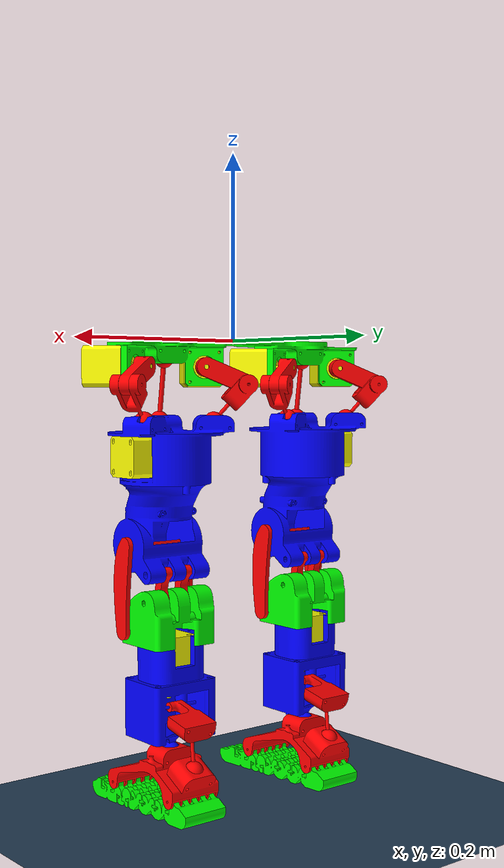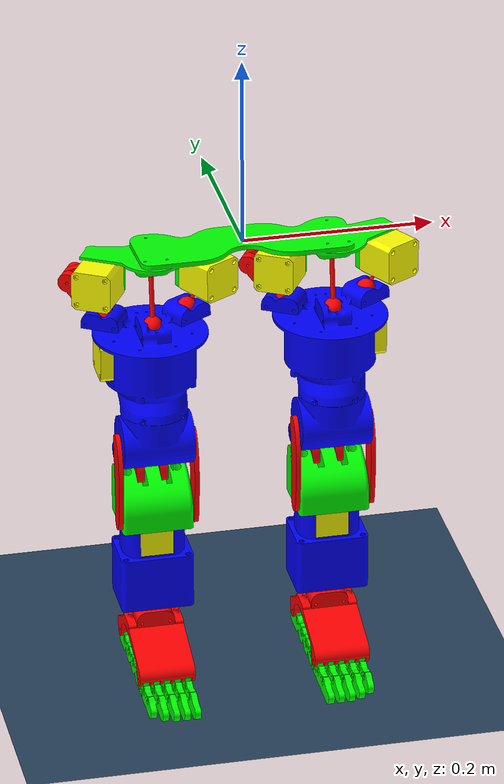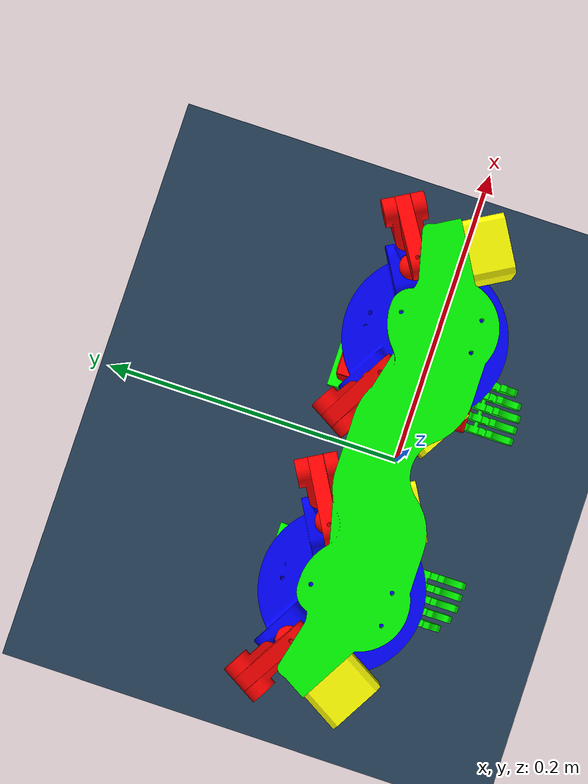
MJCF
<mujoco model="2SR_v1">

  <default>
        <geom type="mesh"/>
  </default>

  <option gravity="0 0 -9.8"/>
  <option integrator="implicitfast"/>

  <asset>
    <mesh name="Tierra_mesh" file="Tierra.stl"/>

    <mesh name="Muslo_pierna1_mesh" file="Muslo_pierna1.stl"/>
    <mesh name="Rodilla_pierna1_mesh" file="Rodilla_pierna1.stl"/>
    <mesh name="BarraLarga_rodilla_pierna1_mesh" file="BarraLarga_rodilla_pierna1.stl"/>
    <mesh name="BarraCorta_rodilla_pierna1_mesh" file="BarraCorta_rodilla_pierna1.stl"/>
    <mesh name="Motor_rodilla_pierna1_mesh" file="Motor_rodilla_pierna1.stl"/>
    <mesh name="Motor_tobillo_pierna1_mesh" file="Motor_tobillo_pierna1.stl"/>
    <mesh name="Pantorrilla_pierna1_mesh" file="Pantorrilla_pierna1.stl"/>
    <mesh name="UnionTobillo_pierna1_mesh" file="UnionTobillo_pierna1.stl"/>
    <mesh name="Pivote_tobillo_pierna1_mesh" file="Pivote_tobillo_pierna1.stl"/>
    <mesh name="Tobillo_pierna1_mesh" file="Tobillo_pierna1.stl"/>
    <mesh name="DedosAtras_pierna1_mesh" file="DedosAtras_pierna1.stl"/>
    <mesh name="DedosDelante_pierna1_mesh" file="DedosDelante_pierna1.stl"/>
    <mesh name="Motor1_cadera_pierna1_mesh" file="Motor1_cadera_pierna1.stl"/>
    <mesh name="Motor2_cadera_pierna1_mesh" file="Motor2_cadera_pierna1.stl"/>
    <mesh name="Barra1_cadera_lado1_pierna1_mesh" file="Barra1_cadera_lado1_pierna1.stl"/>
    <mesh name="Barra1_cadera_lado2_pierna1_mesh" file="Barra1_cadera_lado2_pierna1.stl"/>
    <mesh name="Barra2_cadera_lado1_pierna1_mesh" file="Barra2_cadera_lado1_pierna1.stl"/>
    <mesh name="Barra2_cadera_lado2_pierna1_mesh" file="Barra2_cadera_lado2_pierna1.stl"/>
    <mesh name="Pivote_cadera_pierna1_mesh" file="Pivote_cadera_pierna1.stl"/>
    <mesh name="TrackerRodilla_pierna1_mesh" file="TrackerRodilla_pierna1.stl"/>
    <mesh name="TrackerCadera_pierna1_mesh" file="TrackerCadera_pierna1.stl"/>
    <mesh name="TrackerTobillo_pierna1_mesh" file="TrackerTobillo_pierna1.stl"/>

    <mesh name="Muslo_pierna2_mesh" file="Muslo_pierna2.stl"/>
    <mesh name="Rodilla_pierna2_mesh" file="Rodilla_pierna2.stl"/>
    <mesh name="BarraLarga_rodilla_pierna2_mesh" file="BarraLarga_rodilla_pierna2.stl"/>
    <mesh name="BarraCorta_rodilla_pierna2_mesh" file="BarraCorta_rodilla_pierna2.stl"/>
    <mesh name="Motor_rodilla_pierna2_mesh" file="Motor_rodilla_pierna2.stl"/>
    <mesh name="Motor_tobillo_pierna2_mesh" file="Motor_tobillo_pierna2.stl"/>
    <mesh name="Pantorrilla_pierna2_mesh" file="Pantorrilla_pierna2.stl"/>
    <mesh name="UnionTobillo_pierna2_mesh" file="UnionTobillo_pierna2.stl"/>
    <mesh name="Pivote_tobillo_pierna2_mesh" file="Pivote_tobillo_pierna2.stl"/>
    <mesh name="Tobillo_pierna2_mesh" file="Tobillo_pierna2.stl"/>
    <mesh name="DedosAtras_pierna2_mesh" file="DedosAtras_pierna2.stl"/>
    <mesh name="DedosDelante_pierna2_mesh" file="DedosDelante_pierna2.stl"/>
    <mesh name="Motor1_cadera_pierna2_mesh" file="Motor1_cadera_pierna2.stl"/>
    <mesh name="Motor2_cadera_pierna2_mesh" file="Motor2_cadera_pierna2.stl"/>
    <mesh name="Barra1_cadera_lado1_pierna2_mesh" file="Barra1_cadera_lado1_pierna2.stl"/>
    <mesh name="Barra1_cadera_lado2_pierna2_mesh" file="Barra1_cadera_lado2_pierna2.stl"/>
    <mesh name="Barra2_cadera_lado1_pierna2_mesh" file="Barra2_cadera_lado1_pierna2.stl"/>
    <mesh name="Barra2_cadera_lado2_pierna2_mesh" file="Barra2_cadera_lado2_pierna2.stl"/>
    <mesh name="Pivote_cadera_pierna2_mesh" file="Pivote_cadera_pierna2.stl"/>
    <mesh name="TrackerRodilla_pierna2_mesh" file="TrackerRodilla_pierna2.stl"/>
    <mesh name="TrackerCadera_pierna2_mesh" file="TrackerCadera_pierna2.stl"/>
    <mesh name="TrackerTobillo_pierna2_mesh" file="TrackerTobillo_pierna2.stl"/>

    <texture name="grid" type="2d" builtin="checker" width="512" height="512" rgb1=".1 .2 .3" rgb2=".2 .3 .4"/>
    <material name="grid" texture="grid" texrepeat="2 2" texuniform="true" reflectance=".2"/>

  </asset>

  <worldbody>
    <light name="top" pos="0 0 1"/>

    <body name="Tierra_body">

      <geom mesh="Tierra_mesh" name="Tierra_geom" rgba="0 1 0 1" mass="0.123"/>
          <freejoint/>

          <body name="TrackerCadera_pierna1_body">
              <geom mesh="TrackerCadera_pierna1_mesh" name="TrackerCadera_pierna1_geom" rgba="1 1 1 1" solref="0.1 3"/>
          </body>
          <body name="TrackerCadera_pierna2_body">
              <geom mesh="TrackerCadera_pierna2_mesh" name="TrackerCadera_pierna2_geom" rgba="1 1 1 1" solref="0.1 3"/>
          </body>

          <body name="Motor1_cadera_pierna1_body">
            <geom mesh="Motor1_cadera_pierna1_mesh" name="Motor1_cadera_pierna1_geom" rgba="1 1 0 1" mass="0.270"/>
            <body name="Barra1_cadera_lado1_pierna1_body">
              <joint name="revolute_barra1_cadera_lado1_pierna1" type="hinge" axis="0.5 0.8660254038 0" pos="-0.129832 0.031474 -0.028759"/>
              <geom mesh="Barra1_cadera_lado1_pierna1_mesh" name="Barra1_cadera_lado1_pierna1_geom" rgba="1 0 0 1" mass="0.010" solref="0.1 3"/>
              <body name="Barra2_cadera_lado1_pierna1_body">
                <joint name="revolute_barra2_cadera_lado1_pierna1" type="hinge" axis="0.5 0.8660254038 0" pos="-0.166503 0.052645 -0.046732"/>
                <geom mesh="Barra2_cadera_lado1_pierna1_mesh" name="Barra2_cadera_lado1_pierna1_geom" rgba="1 0 0 1" mass="0.011" solref="0.1 3"/>
              </body>
            </body>
          </body>
          <body name="Motor2_cadera_pierna1_body">
            <geom mesh="Motor2_cadera_pierna1_mesh" name="Motor2_cadera_pierna1_geom" rgba="1 1 0 1" mass="0.270"/>
            <body name="Barra1_cadera_lado2_pierna1_body">
              <joint name="revolute_barra1_cadera_lado2_pierna1" type="hinge" axis="-0.5 0.8660254038 0" pos="-0.06005 0.03153 -0.028759"/>
              <geom mesh="Barra1_cadera_lado2_pierna1_mesh" name="Barra1_cadera_lado2_pierna1_geom" rgba="1 0 0 1" mass="0.010" solref="0.1 3"/>
              <body name="Barra2_cadera_lado2_pierna1_body">
                <joint name="revolute_barra2_cadera_lado2_pierna1" type="hinge" axis="-0.5 0.8660254038 0" pos="-0.023489 0.052638 -0.047027"/>
                <geom mesh="Barra2_cadera_lado2_pierna1_mesh" name="Barra2_cadera_lado2_pierna1_geom" rgba="1 0 0 1" mass="0.011" solref="0.1 3"/>
              </body>
            </body>
          </body>
          <body name="Pivote_cadera_pierna1_body">
            <joint name="ball_pivote_cadera_pierna1" type="ball" pos="-0.09499 0.004541 -0.020"/>
            <geom mesh="Pivote_cadera_pierna1_mesh" name="Pivote_cadera_pierna1_geom" rgba="1 0 0 1" solref="0.1 3"/>
          </body>

          <body name="Motor1_cadera_pierna2_body">
            <geom mesh="Motor1_cadera_pierna2_mesh" name="Motor1_cadera_pierna2_geom" rgba="1 1 0 1" mass="0.270"/>
            <body name="Barra1_cadera_lado1_pierna2_body">
              <joint name="revolute_barra1_cadera_lado1_pierna2" type="hinge" axis="0.5 0.8660254038 0" pos="0.060168 0.031404 -0.028759"/>
              <geom mesh="Barra1_cadera_lado1_pierna2_mesh" name="Barra1_cadera_lado1_pierna2_geom" rgba="1 0 0 1" mass="0.010" solref="0.1 3"/>
              <body name="Barra2_cadera_lado1_pierna2_body">
                <joint name="revolute_barra2_cadera_lado1_pierna2" type="hinge" axis="0.5 0.8660254038 0" pos="0.023497 0.052576 -0.046732"/>
                <geom mesh="Barra2_cadera_lado1_pierna2_mesh" name="Barra2_cadera_lado1_pierna2_geom" rgba="1 0 0 1" mass="0.011" solref="0.1 3"/>
              </body>
            </body>
          </body>
          <body name="Motor2_cadera_pierna2_body">
            <geom mesh="Motor2_cadera_pierna2_mesh" name="Motor2_cadera_pierna2_geom" rgba="1 1 0 1" mass="0.270"/>
            <body name="Barra1_cadera_lado2_pierna2_body">
              <joint name="revolute_barra1_cadera_lado2_pierna2" type="hinge" axis="-0.5 0.8660254038 0" pos="0.12995 0.03146 -0.028759"/>
              <geom mesh="Barra1_cadera_lado2_pierna2_mesh" name="Barra1_cadera_lado2_pierna2_geom" rgba="1 0 0 1" mass="0.010" solref="0.1 3"/>
              <body name="Barra2_cadera_lado2_pierna2_body">
                <joint name="revolute_barra2_cadera_lado2_pierna2" type="hinge" axis="-0.5 0.8660254038 0" pos="0.166511 0.052569 -0.047027"/>
                <geom mesh="Barra2_cadera_lado2_pierna2_mesh" name="Barra2_cadera_lado2_pierna2_geom" rgba="1 0 0 1" mass="0.011" solref="0.1 3"/>
              </body>
            </body>
          </body>
          <body name="Pivote_cadera_pierna2_body">
            <joint name="ball_pivote_cadera_pierna2" type="ball" pos="0.09501 0.004471 -0.020"/>
            <geom mesh="Pivote_cadera_pierna2_mesh" name="Pivote_cadera_pierna2_geom" rgba="1 0 0 1" solref="0.1 3"/>
          </body>

    </body>

    <body name="Muslo_pierna1_body">
      <geom mesh="Muslo_pierna1_mesh" name="Muslo_pierna1_geom" rgba="0 0 1 1" mass="0.249"/>
          <freejoint/>
          <body name="TrackerRodilla_pierna1_body">
              <geom mesh="TrackerRodilla_pierna1_mesh" name="TrackerRodilla_pierna1_geom" rgba="1 1 1 1" solref="0.1 3"/>
          </body>
          <body name="Motor_rodilla_pierna1_body">
            <geom mesh="Motor_rodilla_pierna1_mesh" name="Motor_rodilla_pierna1_geom" rgba="1 1 0 1" mass="0.270"/>
          </body>
          <body name="BarraLarga_rodilla_pierna1_body">
            <joint name="revolute_barralarga_rodilla_pierna1" type="hinge" axis="1 0 0" range="0 85" pos="-0.093413 -0.010479 -0.213464"/>
            <geom mesh="BarraLarga_rodilla_pierna1_mesh" name="BarraLarga_rodilla_pierna1_geom" rgba="1 0 0 1" solref="0.1 3"/>
          </body>
          <body name="BarraCorta_rodilla_pierna1_body">
            <joint name="revolute_barracorta_rodilla_pierna1" type="hinge" axis="1 0 0" range="0 162" pos="-0.094913 0.020629 -0.24052"/>
            <geom mesh="BarraCorta_rodilla_pierna1_mesh" name="BarraCorta_rodilla_pierna1_geom" rgba="1 0 0 1" solref="0.1 3"/>
          </body>
    </body>

    <body name="Muslo_pierna2_body">
      <geom mesh="Muslo_pierna2_mesh" name="Muslo_pierna2_geom" rgba="0 0 1 1" mass="0.249"/>
          <freejoint/>
          <body name="TrackerRodilla_pierna2_body">
              <geom mesh="TrackerRodilla_pierna2_mesh" name="TrackerRodilla_pierna2_geom" rgba="1 1 1 1" solref="0.1 3"/>
          </body>
          <body name="Motor_rodilla_pierna2_body">
            <geom mesh="Motor_rodilla_pierna2_mesh" name="Motor_rodilla_pierna2_geom" rgba="1 1 0 1" mass="0.270"/>
          </body>
          <body name="BarraLarga_rodilla_pierna2_body">
            <joint name="revolute_barralarga_rodilla_pierna2" type="hinge" axis="1 0 0" range="0 85" pos="0.091703 -0.010548 -0.213464"/>
            <geom mesh="BarraLarga_rodilla_pierna2_mesh" name="BarraLarga_rodilla_pierna2_geom" rgba="1 0 0 1" solref="0.1 3"/>
          </body>
          <body name="BarraCorta_rodilla_pierna2_body">
            <joint name="revolute_barracorta_rodilla_pierna2" type="hinge" axis="1 0 0" range="0 162" pos="0.093203 0.020559 -0.24052"/>
            <geom mesh="BarraCorta_rodilla_pierna2_mesh" name="BarraCorta_rodilla_pierna2_geom" rgba="1 0 0 1" solref="0.1 3"/>
          </body>
    </body>

    <body name="Rodilla_pierna1_body">
      <freejoint/>
      <geom mesh="Rodilla_pierna1_mesh" name="Rodilla_pierna1_geom" rgba="0 1 0 1" mass="0.070"/>
      <body name="Pantorrilla_pierna1_body">
            <joint name="spring_pierna1" type="slide" stiffness="3063" damping="2"/>
            <geom mesh="Pantorrilla_pierna1_mesh" name="Pantorrilla_pierna1_geom" rgba="0 0 1 1" mass="0.101" solref="0.04 1"/>

            <body name="TrackerTobillo_pierna1_body">
              <geom mesh="TrackerTobillo_pierna1_mesh" name="TrackerTobillo_pierna1_geom" rgba="1 1 1 1" solref="0.1 3"/>
            </body>

            <body name="Motor_tobillo_pierna1_body">
              <geom mesh="Motor_tobillo_pierna1_mesh" name="Motor_tobillo_pierna1_geom" rgba="1 1 0 1" mass="0.270"/>
            </body>
            <body name="Tobillo_pierna1_body">
                <joint name="ball_tobillo_pierna1" type="hinge" axis="1 0 0" pos="-0.094422 0.011515 -0.429785"/>
                <geom mesh="Tobillo_pierna1_mesh" name="Tobillo_pierna1_geom" rgba="1 0 0 1" mass="0.067" solref="0.04 1"/>
                <body name="DedosDelante_pierna1_body">
                  <joint name="revolute_dedosdelante_pierna1" type="hinge" axis="1 0 0" pos="-0.094422 -0.053908 -0.474397"/>
                  <geom mesh="DedosDelante_pierna1_mesh" name="DedosDelante_pierna1_geom" mass="0.032" rgba="0 1 0 1"/>
                  <body name="DedosAtras_pierna1_body">
                    <joint name="revolute_dedosatras_pierna1" type="hinge" axis="1 0 0" pos="-0.083047 -0.042619 -0.493338"/>
                    <geom mesh="DedosAtras_pierna1_mesh" name="DedosAtras_pierna1_geom" mass="0.053" rgba="0 1 0 1"/>
                  </body>
                </body>
            </body>
            <body name="UnionTobillo_pierna1_body">
              <joint name="revolute_uniontobillo_pierna1" type="hinge" axis="1 0 0" range="-18 35" pos="-0.094338 0.008927 -0.38485"/>
              <geom mesh="UnionTobillo_pierna1_mesh" name="UnionTobillo_pierna1_geom" rgba="1 0 0 1" solref="0.04 1"/>
              <body name="Pivote_tobillo_pierna1_body">
                <joint name="ball_pivote_tobillo_pierna1" type="ball" pos="-0.094422 0.047533 -0.400126"/>
                <geom mesh="Pivote_tobillo_pierna1_mesh" name="Pivote_tobillo_pierna1_geom" rgba="1 0 0 1" solref="0.04 1"/>
              </body>
            </body>
      </body>
    </body>

    <body name="Rodilla_pierna2_body">
      <freejoint/>
      <geom mesh="Rodilla_pierna2_mesh" name="Rodilla_pierna2_geom" rgba="0 1 0 1" mass="0.070"/>
      <body name="Pantorrilla_pierna2_body">
            <joint name="spring_pierna2" type="slide" stiffness="3063" damping="2"/>
            <geom mesh="Pantorrilla_pierna2_mesh" name="Pantorrilla_pierna2_geom" rgba="0 0 1 1" mass="0.101" solref="0.04 1"/>

            <body name="TrackerTobillo_pierna2_body">
              <geom mesh="TrackerTobillo_pierna2_mesh" name="TrackerTobillo_pierna2_geom" rgba="1 1 1 1" solref="0.1 3"/>
            </body>

            <body name="Motor_tobillo_pierna2_body">
              <geom mesh="Motor_tobillo_pierna2_mesh" name="Motor_tobillo_pierna2_geom" rgba="1 1 0 1" mass="0.270"/>
            </body>
            <body name="Tobillo_pierna2_body">
                <joint name="ball_tobillo_pierna2" type="hinge" axis="1 0 0" pos="0.093594 0.011446 -0.429785"/>
                <geom mesh="Tobillo_pierna2_mesh" name="Tobillo_pierna2_geom" rgba="1 0 0 1" mass="0.067" solref="0.04 1"/>
                <body name="DedosDelante_pierna2_body">
                  <joint name="revolute_dedosdelante_pierna2" type="hinge" axis="1 0 0" pos="0.093469 -0.053978 -0.474397"/>
                  <geom mesh="DedosDelante_pierna2_mesh" name="DedosDelante_pierna2_geom" mass="0.032" rgba="0 1 0 1"/>
                  <body name="DedosAtras_pierna2_body">
                    <joint name="revolute_dedosatras_pierna2" type="hinge" axis="1 0 0" pos="0.093469 -0.042692 -0.493268"/>
                    <geom mesh="DedosAtras_pierna2_mesh" name="DedosAtras_pierna2_geom" mass="0.053" rgba="0 1 0 1"/>
                  </body>
                </body>
            </body>
            <body name="UnionTobillo_pierna2_body">
              <joint name="revolute_uniontobillo_pierna2" type="hinge" axis="1 0 0" range="-18 35" pos="0.093678 0.008858 -0.38485"/>
              <geom mesh="UnionTobillo_pierna2_mesh" name="UnionTobillo_pierna2_geom" rgba="1 0 0 1" solref="0.04 1"/>
              <body name="Pivote_tobillo_pierna2_body">
                <joint name="ball_pivote_tobillo_pierna2" type="ball" pos="0.093594 0.047463 -0.400126"/>
                <geom mesh="Pivote_tobillo_pierna2_mesh" name="Pivote_tobillo_pierna2_geom" rgba="1 0 0 1" solref="0.04 1"/>
              </body>
            </body>
      </body>
    </body>

  <geom name="floor" type="plane" size="1 1 .01" pos="0 0 -0.5" material="grid"/>

  <camera name="camara_rodilla" mode="targetbodycom" pos="-1.25 -0.5 -0.15" target="Rodilla_pierna1_body"/>

  </worldbody>

   <contact>

    <exclude body1="TrackerRodilla_pierna1_body" body2="BarraCorta_rodilla_pierna1_body"/>
    <exclude body1="TrackerRodilla_pierna1_body" body2="Muslo_pierna1_body"/>
    <exclude body1="TrackerRodilla_pierna1_body" body2="BarraLarga_rodilla_pierna1_body"/>
    <exclude body1="TrackerRodilla_pierna1_body" body2="Rodilla_pierna1_body"/>
    <exclude body1="TrackerTobillo_pierna1_body" body2="Pantorrilla_pierna1_body"/>
    <exclude body1="TrackerTobillo_pierna1_body" body2="Tobillo_pierna1_body"/>
    <exclude body1="TrackerCadera_pierna1_body" body2="Tierra_body"/>
    <exclude body1="TrackerCadera_pierna1_body" body2="Pivote_cadera_pierna1_body"/>

    <exclude body1="TrackerRodilla_pierna2_body" body2="BarraCorta_rodilla_pierna2_body"/>
    <exclude body1="TrackerRodilla_pierna2_body" body2="Muslo_pierna2_body"/>
    <exclude body1="TrackerRodilla_pierna2_body" body2="BarraLarga_rodilla_pierna2_body"/>
    <exclude body1="TrackerRodilla_pierna2_body" body2="Rodilla_pierna2_body"/>
    <exclude body1="TrackerTobillo_pierna2_body" body2="Pantorrilla_pierna2_body"/>
    <exclude body1="TrackerTobillo_pierna2_body" body2="Tobillo_pierna2_body"/>
    <exclude body1="TrackerCadera_pierna2_body" body2="Tierra_body"/>
    <exclude body1="TrackerCadera_pierna2_body" body2="Pivote_cadera_pierna2_body"/>

  </contact>

  <equality>
    <connect name="kinematic_link_barralargarodilla_pierna1" active="true" body1="Rodilla_pierna1_body" body2="BarraLarga_rodilla_pierna1_body" anchor="-0.094813 -0.016605 -0.303256" solimp="0.95 0.99 0.001" solref="0.005 1"/>
    <connect name="kinematic_link_barracortarodilla_pierna1" active="true" body1="Rodilla_pierna1_body" body2="BarraCorta_rodilla_pierna1_body" anchor="-0.094813 0.016982 -0.269668" solimp="0.95 0.99 0.001" solref="0.005 1"/>

    <connect name="kinematic_link_pivotetobillo_pierna1" active="true" body1="Tobillo_pierna1_body" body2="Pivote_tobillo_pierna1_body" anchor="-0.094422 0.051667 -0.441842" solimp="0.95 0.99 0.001" solref="0.005 1"/>
    <connect name="kinematic_link_dedosatras_pierna1" active="true" body1="Tobillo_pierna1_body" body2="DedosAtras_pierna1_body" anchor="-0.092922 0.046672 -0.470018" solimp="0.95 0.99 0.001" solref="0.005 1"/>

    <connect name="kinematic_link_barra2lado1muslo_pierna1" active="true" body1="Barra2_cadera_lado1_pierna1_body" body2="Muslo_pierna1_body" anchor="-0.139322 0.030601 -0.085116" solimp="0.95 0.99 0.001" solref="0.005 1"/>
    <connect name="kinematic_link_barra2lado2muslo_pierna1" active="true" body1="Barra2_cadera_lado2_pierna1_body" body2="Muslo_pierna1_body" anchor="-0.052468 0.030556 -0.083931" solimp="0.95 0.99 0.001" solref="0.005 1"/>
    <connect name="kinematic_link_pivotecaderamuslo_pierna1" active="true" body1="Pivote_cadera_pierna1_body" body2="Muslo_pierna1_body" anchor="-0.094855 -0.004494 -0.084044" solimp="0.95 0.99 0.001" solref="0.005 1"/>

    <connect name="kinematic_link_barralargarodilla_pierna2" active="true" body1="Rodilla_pierna2_body" body2="BarraLarga_rodilla_pierna2_body" anchor="0.093203 -0.016675 -0.303256" solimp="0.95 0.99 0.001" solref="0.005 1"/>
    <connect name="kinematic_link_barracortarodilla_pierna2" active="true" body1="Rodilla_pierna2_body" body2="BarraCorta_rodilla_pierna2_body" anchor="0.093203 0.016913 -0.269668" solimp="0.95 0.99 0.001" solref="0.005 1"/>
    <connect name="kinematic_link_pivotetobillo_pierna2" active="true" body1="Tobillo_pierna2_body" body2="Pivote_tobillo_pierna2_body" anchor="0.093594 0.051597 -0.441842" solimp="0.95 0.99 0.001" solref="0.005 1"/>
    <connect name="kinematic_link_dedosatras_pierna2" active="true" body1="Tobillo_pierna2_body" body2="DedosAtras_pierna2_body" anchor="0.093469 0.046599 -0.469948" solimp="0.95 0.99 0.001" solref="0.005 1"/>
    <connect name="kinematic_link_barra2lado1muslo_pierna2" active="true" body1="Barra2_cadera_lado1_pierna2_body" body2="Muslo_pierna2_body" anchor="0.050678 0.030532 -0.085116" solimp="0.95 0.99 0.001" solref="0.005 1"/>
    <connect name="kinematic_link_barra2lado2muslo_pierna2" active="true" body1="Barra2_cadera_lado2_pierna2_body" body2="Muslo_pierna2_body" anchor="0.137532 0.030486 -0.083931" solimp="0.95 0.99 0.001" solref="0.005 1"/>
    <connect name="kinematic_link_pivotecaderamuslo_pierna2" active="true" body1="Pivote_cadera_pierna2_body" body2="Muslo_pierna2_body" anchor="0.095145 -0.004643 -0.084358" solimp="0.95 0.99 0.001" solref="0.005 1"/>

  </equality>

  <actuator>

      <position name="motor_rodilla_pierna1" joint="revolute_barralarga_rodilla_pierna1" ctrlrange="0 1.48" kp="48" kv="0.05" timeconst="0.001" />

      <position name="motor_tobillo_pierna1" joint="revolute_uniontobillo_pierna1" ctrlrange="-0.31 0.61" kp="2.38" kv="0.05" timeconst="0.001" />

      <position name="motor_rodilla_pierna2" joint="revolute_barralarga_rodilla_pierna2" ctrlrange="0 1.48" kp="48" kv="0.05" timeconst="0.001" />
      <position name="motor_tobillo_pierna2" joint="revolute_uniontobillo_pierna2" ctrlrange="-0.31 0.61" kp="2.38" kv="0.05" timeconst="0.001" />

      <position name="motor1_cadera_pierna1" joint="revolute_barra1_cadera_lado1_pierna1" ctrlrange="-0.95 0.698" kp="7" kv="0.05" timeconst="0.001" />

      <position name="motor2_cadera_pierna1" joint="revolute_barra1_cadera_lado2_pierna1" ctrlrange="-0.698 0.95" kp="7" kv="0.05" timeconst="0.001" />

      <position name="motor1_cadera_pierna2" joint="revolute_barra1_cadera_lado1_pierna2" ctrlrange="-0.95 0.698" kp="7" kv="0.05" timeconst="0.001" />

      <position name="motor2_cadera_pierna2" joint="revolute_barra1_cadera_lado2_pierna2" ctrlrange="-0.698 0.95" kp="7" kv="0.05" timeconst="0.001" />
  </actuator>

  <sensor>
    <framepos objtype="body" objname="TrackerRodilla_pierna1_body"/>
    <framelinvel objtype="body" objname="TrackerRodilla_pierna1_body"/>
    <frameangvel objtype="body" objname="TrackerRodilla_pierna1_body"/>

    <framepos objtype="body" objname="TrackerRodilla_pierna2_body"/>
    <framelinvel objtype="body" objname="TrackerRodilla_pierna2_body"/>
    <frameangvel objtype="body" objname="TrackerRodilla_pierna2_body"/>
  </sensor>

</mujoco>
